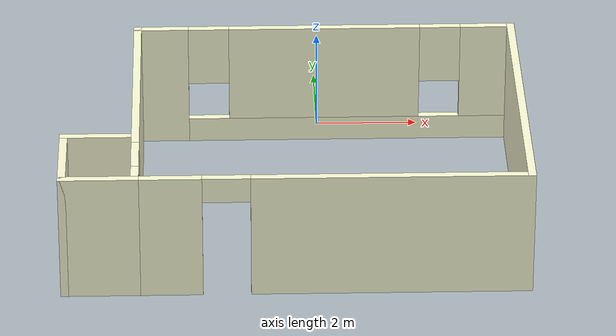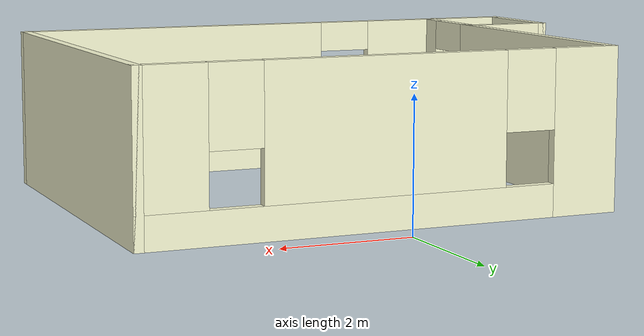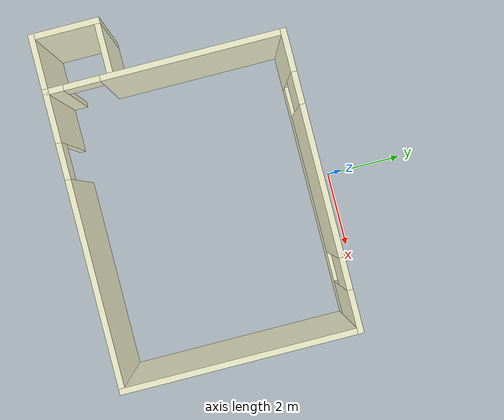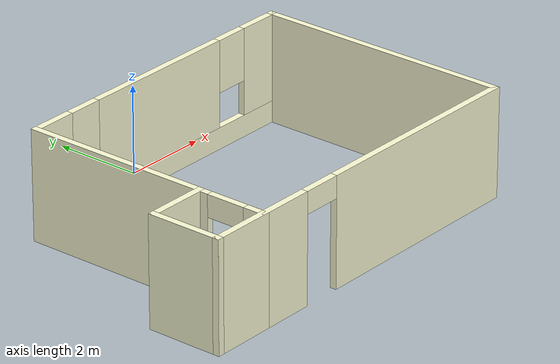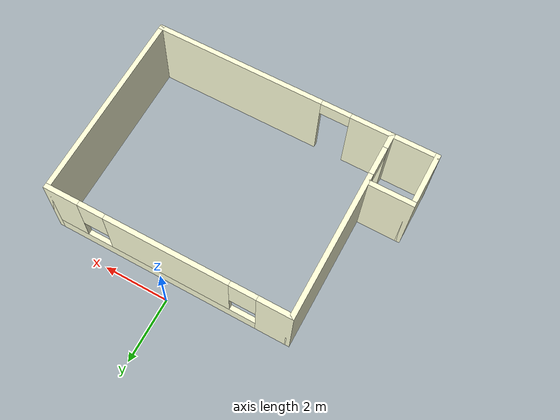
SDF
<?xml version='1.0'?>
<sdf version='1.6'>
  <model name='Building'>
    <pose frame=''>-0.54 -3.485 0 0 -0 0</pose>
    <link name='Wall_0'>
      <pose frame=''>0.675 2.925 0 0 -0 0</pose>
      <visual name='Wall_0_Visual_0'>
        <pose frame=''>-3.217 0 1.25 0 -0 0</pose>
        <geometry>
          <box>
            <size>1.066 0.15 2.5</size>
          </box>
        </geometry>
        <material>
          <script>
            <uri>file://media/materials/scripts/gazebo.material</uri>
            <name>Gazebo/Grey</name>
          </script>
          <ambient>0.996078 1 0.847059 1</ambient>
        </material>
        <meta>
          <layer>0</layer>
        </meta>
      </visual>
      <collision name='Wall_0_Collision_0'>
        <geometry>
          <box>
            <size>1.066 0.15 2.5</size>
          </box>
        </geometry>
        <pose frame=''>-3.217 0 1.25 0 -0 0</pose>
      </collision>
      <visual name='Wall_0_Visual_1'>
        <pose frame=''>0.533 0 0.25 0 -0 0</pose>
        <geometry>
          <box>
            <size>6.434 0.15 0.5</size>
          </box>
        </geometry>
        <material>
          <script>
            <uri>file://media/materials/scripts/gazebo.material</uri>
            <name>Gazebo/Grey</name>
          </script>
          <ambient>0.996078 1 0.847059 1</ambient>
        </material>
        <meta>
          <layer>0</layer>
        </meta>
      </visual>
      <collision name='Wall_0_Collision_1'>
        <geometry>
          <box>
            <size>6.434 0.15 0.5</size>
          </box>
        </geometry>
        <pose frame=''>0.533 0 0.25 0 -0 0</pose>
      </collision>
      <visual name='Wall_0_Visual_2'>
        <pose frame=''>-0.00125 0 1.5 0 -0 0</pose>
        <geometry>
          <box>
            <size>3.7655 0.15 2</size>
          </box>
        </geometry>
        <material>
          <script>
            <uri>file://media/materials/scripts/gazebo.material</uri>
            <name>Gazebo/Grey</name>
          </script>
          <ambient>0.996078 1 0.847059 1</ambient>
        </material>
        <meta>
          <layer>0</layer>
        </meta>
      </visual>
      <collision name='Wall_0_Collision_2'>
        <geometry>
          <box>
            <size>3.7655 0.15 2</size>
          </box>
        </geometry>
        <pose frame=''>-0.00125 0 1.5 0 -0 0</pose>
      </collision>
      <visual name='Wall_0_Visual_3'>
        <pose frame=''>3.21575 0 1.5 0 -0 0</pose>
        <geometry>
          <box>
            <size>1.0685 0.15 2</size>
          </box>
        </geometry>
        <material>
          <script>
            <uri>file://media/materials/scripts/gazebo.material</uri>
            <name>Gazebo/Grey</name>
          </script>
          <ambient>0.996078 1 0.847059 1</ambient>
        </material>
        <meta>
          <layer>0</layer>
        </meta>
      </visual>
      <collision name='Wall_0_Collision_3'>
        <geometry>
          <box>
            <size>1.0685 0.15 2</size>
          </box>
        </geometry>
        <pose frame=''>3.21575 0 1.5 0 -0 0</pose>
      </collision>
      <visual name='Wall_0_Visual_4'>
        <pose frame=''>-2.284 0 1.9 0 -0 0</pose>
        <geometry>
          <box>
            <size>0.8 0.15 1.2</size>
          </box>
        </geometry>
        <material>
          <script>
            <uri>file://media/materials/scripts/gazebo.material</uri>
            <name>Gazebo/Grey</name>
          </script>
          <ambient>0.996078 1 0.847059 1</ambient>
        </material>
        <meta>
          <layer>0</layer>
        </meta>
      </visual>
      <collision name='Wall_0_Collision_4'>
        <geometry>
          <box>
            <size>0.8 0.15 1.2</size>
          </box>
        </geometry>
        <pose frame=''>-2.284 0 1.9 0 -0 0</pose>
      </collision>
      <visual name='Wall_0_Visual_5'>
        <pose frame=''>2.2815 0 1.9 0 -0 0</pose>
        <geometry>
          <box>
            <size>0.8 0.15 1.2</size>
          </box>
        </geometry>
        <material>
          <script>
            <uri>file://media/materials/scripts/gazebo.material</uri>
            <name>Gazebo/Grey</name>
          </script>
          <ambient>0.996078 1 0.847059 1</ambient>
        </material>
        <meta>
          <layer>0</layer>
        </meta>
      </visual>
      <collision name='Wall_0_Collision_5'>
        <geometry>
          <box>
            <size>0.8 0.15 1.2</size>
          </box>
        </geometry>
        <pose frame=''>2.2815 0 1.9 0 -0 0</pose>
      </collision>
    </link>
    <link name='Wall_1'>
      <collision name='Wall_1_Collision'>
        <geometry>
          <box>
            <size>6 0.15 2.5</size>
          </box>
        </geometry>
        <pose frame=''>0 0 1.25 0 -0 0</pose>
      </collision>
      <visual name='Wall_1_Visual'>
        <pose frame=''>0 0 1.25 0 -0 0</pose>
        <geometry>
          <box>
            <size>6 0.15 2.5</size>
          </box>
        </geometry>
        <material>
          <script>
            <uri>file://media/materials/scripts/gazebo.material</uri>
            <name>Gazebo/Grey</name>
          </script>
          <ambient>0.996078 1 0.847059 1</ambient>
        </material>
        <meta>
          <layer>0</layer>
        </meta>
      </visual>
      <pose frame=''>4.35 0 0 0 0 -1.5708</pose>
    </link>
    <link name='Wall_2'>
      <pose frame=''>0.675 -2.925 0 0 -0 3.14159</pose>
      <visual name='Wall_2_Visual_0'>
        <pose frame=''>-1.11026 0 1.25 0 -0 0</pose>
        <geometry>
          <box>
            <size>5.27948 0.15 2.5</size>
          </box>
        </geometry>
        <material>
          <script>
            <uri>file://media/materials/scripts/gazebo.material</uri>
            <name>Gazebo/Grey</name>
          </script>
          <ambient>0.996078 1 0.847059 1</ambient>
        </material>
        <meta>
          <layer>0</layer>
        </meta>
      </visual>
      <collision name='Wall_2_Collision_0'>
        <geometry>
          <box>
            <size>5.27948 0.15 2.5</size>
          </box>
        </geometry>
        <pose frame=''>-1.11026 0 1.25 0 -0 0</pose>
      </collision>
      <visual name='Wall_2_Visual_1'>
        <pose frame=''>3.08974 0 1.25 0 -0 0</pose>
        <geometry>
          <box>
            <size>1.32052 0.15 2.5</size>
          </box>
        </geometry>
        <material>
          <script>
            <uri>file://media/materials/scripts/gazebo.material</uri>
            <name>Gazebo/Grey</name>
          </script>
          <ambient>0.996078 1 0.847059 1</ambient>
        </material>
        <meta>
          <layer>0</layer>
        </meta>
      </visual>
      <collision name='Wall_2_Collision_1'>
        <geometry>
          <box>
            <size>1.32052 0.15 2.5</size>
          </box>
        </geometry>
        <pose frame=''>3.08974 0 1.25 0 -0 0</pose>
      </collision>
      <visual name='Wall_2_Visual_2'>
        <pose frame=''>1.97948 0 2.25 0 -0 0</pose>
        <geometry>
          <box>
            <size>0.9 0.15 0.5</size>
          </box>
        </geometry>
        <material>
          <script>
            <uri>file://media/materials/scripts/gazebo.material</uri>
            <name>Gazebo/Grey</name>
          </script>
          <ambient>0.996078 1 0.847059 1</ambient>
        </material>
        <meta>
          <layer>0</layer>
        </meta>
      </visual>
      <collision name='Wall_2_Collision_2'>
        <geometry>
          <box>
            <size>0.9 0.15 0.5</size>
          </box>
        </geometry>
        <pose frame=''>1.97948 0 2.25 0 -0 0</pose>
      </collision>
    </link>
    <link name='Wall_3'>
      <pose frame=''>-3 0 0 0 -0 1.5708</pose>
      <visual name='Wall_3_Visual_0'>
        <pose frame=''>-2.74328 0 1.25 0 -0 0</pose>
        <geometry>
          <box>
            <size>0.513437 0.15 2.5</size>
          </box>
        </geometry>
        <material>
          <script>
            <uri>file://media/materials/scripts/gazebo.material</uri>
            <name>Gazebo/Grey</name>
          </script>
          <ambient>0.996078 1 0.847059 1</ambient>
        </material>
        <meta>
          <layer>0</layer>
        </meta>
      </visual>
      <collision name='Wall_3_Collision_0'>
        <geometry>
          <box>
            <size>0.513437 0.15 2.5</size>
          </box>
        </geometry>
        <pose frame=''>-2.74328 0 1.25 0 -0 0</pose>
      </collision>
      <visual name='Wall_3_Visual_1'>
        <pose frame=''>0.706719 0 1.25 0 -0 0</pose>
        <geometry>
          <box>
            <size>4.58656 0.15 2.5</size>
          </box>
        </geometry>
        <material>
          <script>
            <uri>file://media/materials/scripts/gazebo.material</uri>
            <name>Gazebo/Grey</name>
          </script>
          <ambient>0.996078 1 0.847059 1</ambient>
        </material>
        <meta>
          <layer>0</layer>
        </meta>
      </visual>
      <collision name='Wall_3_Collision_1'>
        <geometry>
          <box>
            <size>4.58656 0.15 2.5</size>
          </box>
        </geometry>
        <pose frame=''>0.706719 0 1.25 0 -0 0</pose>
      </collision>
      <visual name='Wall_3_Visual_2'>
        <pose frame=''>-2.03656 0 2.25 0 -0 0</pose>
        <geometry>
          <box>
            <size>0.9 0.15 0.5</size>
          </box>
        </geometry>
        <material>
          <script>
            <uri>file://media/materials/scripts/gazebo.material</uri>
            <name>Gazebo/Grey</name>
          </script>
          <ambient>0.996078 1 0.847059 1</ambient>
        </material>
        <meta>
          <layer>0</layer>
        </meta>
      </visual>
      <collision name='Wall_3_Collision_2'>
        <geometry>
          <box>
            <size>0.9 0.15 0.5</size>
          </box>
        </geometry>
        <pose frame=''>-2.03656 0 2.25 0 -0 0</pose>
      </collision>
    </link>
    <link name='Wall_5'>
      <collision name='Wall_5_Collision'>
        <geometry>
          <box>
            <size>1.5 0.15 2.5</size>
          </box>
        </geometry>
        <pose frame=''>0 0 1.25 0 -0 0</pose>
      </collision>
      <visual name='Wall_5_Visual'>
        <pose frame=''>0 0 1.25 0 -0 0</pose>
        <geometry>
          <box>
            <size>1.5 0.15 2.5</size>
          </box>
        </geometry>
        <material>
          <script>
            <uri>file://media/materials/scripts/gazebo.material</uri>
            <name>Gazebo/Grey</name>
          </script>
          <ambient>0.996078 1 0.847059 1</ambient>
        </material>
        <meta>
          <layer>0</layer>
        </meta>
      </visual>
      <pose frame=''>-3.675 -2.925 0 0 -0 3.14159</pose>
    </link>
    <link name='Wall_6'>
      <collision name='Wall_6_Collision'>
        <geometry>
          <box>
            <size>1.75 0.15 2.5</size>
          </box>
        </geometry>
        <pose frame=''>0 0 1.25 0 -0 0</pose>
      </collision>
      <visual name='Wall_6_Visual'>
        <pose frame=''>0 0 1.25 0 -0 0</pose>
        <geometry>
          <box>
            <size>1.75 0.15 2.5</size>
          </box>
        </geometry>
        <material>
          <script>
            <uri>file://media/materials/scripts/gazebo.material</uri>
            <name>Gazebo/Grey</name>
          </script>
          <ambient>0.992157 0.996078 0.843137 1</ambient>
        </material>
        <meta>
          <layer>0</layer>
        </meta>
      </visual>
      <pose frame=''>-4.35 -2.125 0 0 -0 1.5708</pose>
    </link>
    <link name='Wall_7'>
      <collision name='Wall_7_Collision'>
        <geometry>
          <box>
            <size>1.5 0.15 2.5</size>
          </box>
        </geometry>
        <pose frame=''>0 0 1.25 0 -0 0</pose>
      </collision>
      <visual name='Wall_7_Visual'>
        <pose frame=''>0 0 1.25 0 -0 0</pose>
        <geometry>
          <box>
            <size>1.5 0.15 2.5</size>
          </box>
        </geometry>
        <material>
          <script>
            <uri>file://media/materials/scripts/gazebo.material</uri>
            <name>Gazebo/Grey</name>
          </script>
          <ambient>0.992157 0.996078 0.843137 1</ambient>
        </material>
        <meta>
          <layer>0</layer>
        </meta>
      </visual>
      <pose frame=''>-3.675 -1.325 0 0 -0 0</pose>
    </link>
    <static>1</static>
  </model>
</sdf>
